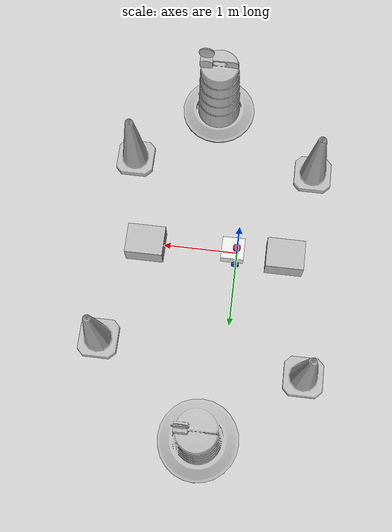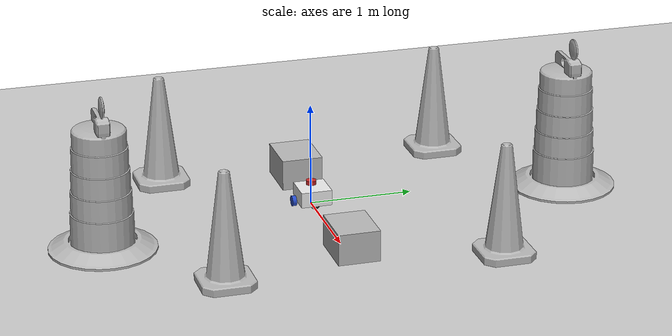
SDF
<sdf version="1.7">
 <world name="default">
  <light name="sun" type="directional">
   <pose>0 0 10 0 -0 0</pose>
   <diffuse>0.8 0.8 0.8 1</diffuse>
   <specular>0.2 0.2 0.2 1</specular>
   <attenuation>
    <range>1000</range>
    <constant>0.9</constant>
    <linear>0.01</linear>
    <quadratic>0.001</quadratic>
   </attenuation>
   <direction>-0.5 0.1 -0.9</direction>
   <spot><inner_angle>0</inner_angle><outer_angle>0</outer_angle><falloff>0</falloff></spot>
  </light>
  <model name="ground_plane">
   <static>1</static>
   <link name="link">
    <collision name="collision">
     <geometry><plane><normal>0 0 1</normal><size>100 100</size></plane></geometry>
     <surface>
      <contact><collide_bitmask>65535</collide_bitmask></contact>
      <friction><ode><mu>100</mu><mu2>50</mu2></ode></friction>
     </surface>
    </collision>
    <visual name="visual">
     <cast_shadows>0</cast_shadows>
     <geometry><plane><normal>0 0 1</normal><size>100 100</size></plane></geometry>
     <material>
      <script><uri>file://media/materials/scripts/gazebo.material</uri><name>Gazebo/Grey</name></script>
     </material>
    </visual>
   </link>
  </model>
  <gravity>0 0 -9.8</gravity>
  <magnetic_field>6e-06 2.3e-05 -4.2e-05</magnetic_field>
  <atmosphere type="adiabatic"/>
  <physics type="ode">
   <max_step_size>0.001</max_step_size>
   <real_time_factor>1</real_time_factor>
   <real_time_update_rate>1000</real_time_update_rate>
  </physics>
  <scene><ambient>0.4 0.4 0.4 1</ambient><background>0.7 0.7 0.7 1</background><shadows>1</shadows></scene>
  <spherical_coordinates>
   <surface_model>EARTH_WGS84</surface_model>
   <latitude_deg>0</latitude_deg>
   <longitude_deg>0</longitude_deg>
   <elevation>0</elevation>
   <heading_deg>0</heading_deg>
  </spherical_coordinates>
  <model name="model">
   <link name="base_link">
    <inertial>
     <pose>0.055714 0 0.078571 0 -0 0</pose>
     <mass>0.7</mass>
     <inertia>
      <ixx>0.0064244</ixx>
      <ixy>0</ixy>
      <ixz>0.00118929</ixz>
      <iyy>0.00746155</iyy>
      <iyz>0</iyz>
      <izz>0.00876214</izz>
     </inertia>
    </inertial>
    <collision name="base_link_fixed_joint_lump__chassis_collision">
     <pose>0.05 0 0.075 0 -0 0</pose>
     <geometry><box><size>0.3 0.3 0.15</size></box></geometry>
    </collision>
    <collision name="base_link_fixed_joint_lump__caster_wheel_collision_1">
     <pose>0.14 0 0 0 -0 0</pose>
     <geometry><sphere><radius>0.05</radius></sphere></geometry>
     <surface><friction><ode><mu>0.001</mu><mu2>0.001</mu2></ode></friction></surface>
    </collision>
    <collision name="base_link_fixed_joint_lump__laser_frame_collision_2">
     <pose>0 0 0.175 0 -0 0</pose>
     <geometry><cylinder><length>0.04</length><radius>0.05</radius></cylinder></geometry>
    </collision>
    <visual name="base_link_fixed_joint_lump__chassis_visual">
     <pose>0.05 0 0.075 0 -0 0</pose>
     <geometry><box><size>0.3 0.3 0.15</size></box></geometry>
     <material>
      <script><name>Gazebo/White</name><uri>file://media/materials/scripts/gazebo.material</uri></script>
     </material>
    </visual>
    <visual name="base_link_fixed_joint_lump__caster_wheel_visual_1">
     <pose>0.14 0 0 0 -0 0</pose>
     <geometry><sphere><radius>0.05</radius></sphere></geometry>
     <material>
      <script><name>Gazebo/Black</name><uri>file://media/materials/scripts/gazebo.material</uri></script>
     </material>
    </visual>
    <visual name="base_link_fixed_joint_lump__laser_frame_visual_2">
     <pose>0 0 0.175 0 -0 0</pose>
     <geometry><cylinder><length>0.04</length><radius>0.05</radius></cylinder></geometry>
     <material>
      <script><name>Gazebo/Red</name><uri>file://media/materials/scripts/gazebo.material</uri></script>
     </material>
    </visual>
    <sensor name="laser" type="ray">
     <visualize>1</visualize>
     <update_rate>10</update_rate>
     <ray>
      <scan>
       <horizontal>
        <samples>360</samples>
        <min_angle>-3.14</min_angle>
        <max_angle>3.14</max_angle>
        <resolution>1</resolution>
       </horizontal>
       <vertical><samples>1</samples><min_angle>0</min_angle><max_angle>0</max_angle></vertical>
      </scan>
      <range><min>0.3</min><max>12</max></range>
     </ray>
     <plugin name="laser_controller" filename="libgazebo_ros_ray_sensor.so">
      <ros><argument>~/out:=scan</argument></ros>
      <output_type>sensor_msgs/LaserScan</output_type>
      <frame_name>laser_frame</frame_name>
     </plugin>
     <pose>0 0 0.175 0 -0 0</pose>
    </sensor>
   </link>
   <joint name="left_wheel_joint" type="revolute">
    <pose relative_to="base_link">0 0.175 0 -1.5708 0 0</pose>
    <parent>base_link</parent>
    <child>left_wheel</child>
    <axis>
     <xyz>0 0 1</xyz>
     <limit><lower>-1e+16</lower><upper>1e+16</upper></limit>
     <dynamics><spring_reference>0</spring_reference><spring_stiffness>0</spring_stiffness></dynamics>
    </axis>
   </joint>
   <link name="left_wheel">
    <pose relative_to="left_wheel_joint">0 0 0 0 -0 0</pose>
    <inertial>
     <mass>0.1</mass>
     <inertia>
      <ixx>8.33333e-05</ixx>
      <ixy>0</ixy>
      <ixz>0</ixz>
      <iyy>8.33333e-05</iyy>
      <iyz>0</iyz>
      <izz>0.000125</izz>
     </inertia>
    </inertial>
    <collision name="left_wheel_collision">
     <geometry><cylinder><length>0.04</length><radius>0.05</radius></cylinder></geometry>
    </collision>
    <visual name="left_wheel_visual">
     <geometry><cylinder><length>0.04</length><radius>0.05</radius></cylinder></geometry>
     <material>
      <script><name>Gazebo/Blue</name><uri>file://media/materials/scripts/gazebo.material</uri></script>
     </material>
    </visual>
   </link>
   <joint name="right_wheel_joint" type="revolute">
    <pose relative_to="base_link">0 -0.175 0 1.5708 -0 0</pose>
    <parent>base_link</parent>
    <child>right_wheel</child>
    <axis>
     <xyz>0 0 -1</xyz>
     <limit><lower>-1e+16</lower><upper>1e+16</upper></limit>
     <dynamics><spring_reference>0</spring_reference><spring_stiffness>0</spring_stiffness></dynamics>
    </axis>
   </joint>
   <link name="right_wheel">
    <pose relative_to="right_wheel_joint">0 0 0 0 -0 0</pose>
    <inertial>
     <mass>0.1</mass>
     <inertia>
      <ixx>8.33333e-05</ixx>
      <ixy>0</ixy>
      <ixz>0</ixz>
      <iyy>8.33333e-05</iyy>
      <iyz>0</iyz>
      <izz>0.000125</izz>
     </inertia>
    </inertial>
    <collision name="right_wheel_collision">
     <geometry><cylinder><length>0.04</length><radius>0.05</radius></cylinder></geometry>
    </collision>
    <visual name="right_wheel_visual">
     <geometry><cylinder><length>0.04</length><radius>0.05</radius></cylinder></geometry>
     <material>
      <script><name>Gazebo/Blue</name><uri>file://media/materials/scripts/gazebo.material</uri></script>
     </material>
    </visual>
   </link>
   <static>0</static>
   <plugin name="diff_drive" filename="libgazebo_ros_diff_drive.so">
    <left_joint>left_wheel_joint</left_joint>
    <right_joint>right_wheel_joint</right_joint>
    <wheel_seperation>0.35</wheel_seperation>
    <wheel_diameter>0.1</wheel_diameter>
    <max_wheel_tork>200</max_wheel_tork>
    <max_wheel_acceleration>10.0</max_wheel_acceleration>
    <odometry_frame>odom</odometry_frame>
    <robot_base_frame>base_link</robot_base_frame>
    <publish_odom>1</publish_odom>
    <publish_odom_tf>1</publish_odom_tf>
    <publish_wheel_tf>1</publish_wheel_tf>
   </plugin>
   <pose>0.011032 0.000376 0.05 -0 2e-06 -0.002021</pose>
  </model>
  <model name="Construction Cone">
   <link name="link">
    <collision name="collision">
     <geometry>
      <mesh><scale>10 10 10</scale><uri>model://construction_cone/meshes/construction_cone.dae</uri></mesh>
     </geometry>
    </collision>
    <visual name="visual">
     <geometry>
      <mesh><scale>10 10 10</scale><uri>model://construction_cone/meshes/construction_cone.dae</uri></mesh>
     </geometry>
    </visual>
    <inertial>
     <inertia><ixx>1</ixx><ixy>0</ixy><ixz>0</ixz><iyy>1</iyy><iyz>0</iyz><izz>1</izz></inertia>
     <mass>1</mass>
    </inertial>
   </link>
   <pose>1.55891 -1.2331 -9e-06 -5e-06 -0 -0</pose>
  </model>
  <model name="Construction Cone_0">
   <link name="link">
    <collision name="collision">
     <geometry>
      <mesh><scale>10 10 10</scale><uri>model://construction_cone/meshes/construction_cone.dae</uri></mesh>
     </geometry>
    </collision>
    <visual name="visual">
     <geometry>
      <mesh><scale>10 10 10</scale><uri>model://construction_cone/meshes/construction_cone.dae</uri></mesh>
     </geometry>
    </visual>
    <inertial>
     <inertia><ixx>1</ixx><ixy>0</ixy><ixz>0</ixz><iyy>1</iyy><iyz>0</iyz><izz>1</izz></inertia>
     <mass>1</mass>
    </inertial>
   </link>
   <pose>1.66054 1.36993 -0 0 -0 0</pose>
  </model>
  <model name="Construction Cone_1">
   <link name="link">
    <collision name="collision">
     <geometry>
      <mesh><scale>10 10 10</scale><uri>model://construction_cone/meshes/construction_cone.dae</uri></mesh>
     </geometry>
    </collision>
    <visual name="visual">
     <geometry>
      <mesh><scale>10 10 10</scale><uri>model://construction_cone/meshes/construction_cone.dae</uri></mesh>
     </geometry>
    </visual>
    <inertial>
     <inertia><ixx>1</ixx><ixy>0</ixy><ixz>0</ixz><iyy>1</iyy><iyz>0</iyz><izz>1</izz></inertia>
     <mass>1</mass>
    </inertial>
   </link>
   <pose>-1.00924 1.5693 -0 0 -0 0</pose>
  </model>
  <model name="Construction Cone_2">
   <link name="link">
    <collision name="collision">
     <geometry>
      <mesh><scale>10 10 10</scale><uri>model://construction_cone/meshes/construction_cone.dae</uri></mesh>
     </geometry>
    </collision>
    <visual name="visual">
     <geometry>
      <mesh><scale>10 10 10</scale><uri>model://construction_cone/meshes/construction_cone.dae</uri></mesh>
     </geometry>
    </visual>
    <inertial>
     <inertia><ixx>1</ixx><ixy>0</ixy><ixz>0</ixz><iyy>1</iyy><iyz>0</iyz><izz>1</izz></inertia>
     <mass>1</mass>
    </inertial>
   </link>
   <pose>-0.924702 -1.26403 -0 0 -0 0</pose>
  </model>
  <model name="Construction Barrel">
   <link name="link">
    <inertial>
     <pose>0 0 0.4 0 -0 0</pose>
     <mass>500</mass>
     <inertia><ixx>51.2096</ixx><iyy>51.2096</iyy><izz>25</izz><ixy>0</ixy><ixz>0</ixz><iyz>0</iyz></inertia>
    </inertial>
    <collision name="collision">
     <geometry><mesh><uri>model://construction_barrel/meshes/construction_barrel.dae</uri></mesh></geometry>
    </collision>
    <visual name="visual">
     <geometry><mesh><uri>model://construction_barrel/meshes/construction_barrel.dae</uri></mesh></geometry>
    </visual>
   </link>
   <pose>0.487102 -2.13046 -1e-06 4e-06 -1e-06 -1.6e-05</pose>
  </model>
  <model name="Construction Barrel_0">
   <link name="link">
    <inertial>
     <pose>0 0 0.4 0 -0 0</pose>
     <mass>500</mass>
     <inertia><ixx>51.2096</ixx><iyy>51.2096</iyy><izz>25</izz><ixy>0</ixy><ixz>0</ixz><iyz>0</iyz></inertia>
    </inertial>
    <collision name="collision">
     <geometry><mesh><uri>model://construction_barrel/meshes/construction_barrel.dae</uri></mesh></geometry>
    </collision>
    <visual name="visual">
     <geometry><mesh><uri>model://construction_barrel/meshes/construction_barrel.dae</uri></mesh></geometry>
    </visual>
   </link>
   <pose>0.22789 2.49632 1e-06 4e-06 3e-06 -1.5e-05</pose>
  </model>
  <model name="cardboard_box">
   <pose>1.22635 0.041618 0.149021 2e-06 -2e-06 -0</pose>
   <link name="link">
    <inertial>
     <mass>2</mass>
     <inertia>
      <ixx>0.0416667</ixx>
      <ixy>0</ixy>
      <ixz>0</ixz>
      <iyy>0.0566667</iyy>
      <iyz>0</iyz>
      <izz>0.0683333</izz>
     </inertia>
    </inertial>
    <collision name="collision">
     <geometry><box><size>0.5 0.4 0.3</size></box></geometry>
     <surface>
      <friction><ode><mu>1</mu><mu2>1</mu2></ode></friction>
      <contact><ode><kp>1e+07</kp><kd>1</kd><min_depth>0.001</min_depth><max_vel>0.1</max_vel></ode></contact>
     </surface>
    </collision>
    <visual name="visual">
     <pose>0 0 -0.15 0 -0 0</pose>
     <geometry>
      <mesh><uri>model://cardboard_box/meshes/cardboard_box.dae</uri><scale>1.25932 1.00745 0.755591</scale></mesh>
     </geometry>
    </visual>
   </link>
  </model>
  <model name="cardboard_box_0">
   <pose>-0.633722 0.025998 0.14951 2e-06 -2e-06 -0</pose>
   <link name="link">
    <inertial>
     <mass>2</mass>
     <inertia>
      <ixx>0.0416667</ixx>
      <ixy>0</ixy>
      <ixz>0</ixz>
      <iyy>0.0566667</iyy>
      <iyz>0</iyz>
      <izz>0.0683333</izz>
     </inertia>
    </inertial>
    <collision name="collision">
     <geometry><box><size>0.5 0.4 0.3</size></box></geometry>
     <surface>
      <friction><ode><mu>1</mu><mu2>1</mu2></ode></friction>
      <contact><ode><kp>1e+07</kp><kd>1</kd><min_depth>0.001</min_depth><max_vel>0.1</max_vel></ode></contact>
     </surface>
    </collision>
    <visual name="visual">
     <pose>0 0 -0.15 0 -0 0</pose>
     <geometry>
      <mesh><uri>model://cardboard_box/meshes/cardboard_box.dae</uri><scale>1.25932 1.00745 0.755591</scale></mesh>
     </geometry>
    </visual>
   </link>
  </model>
 </world>
</sdf>
